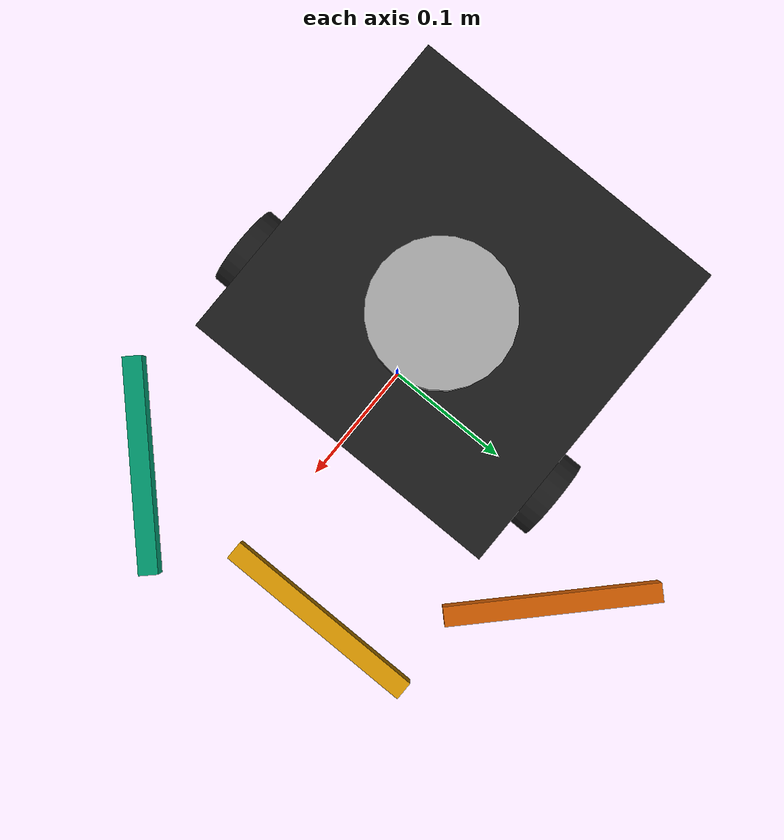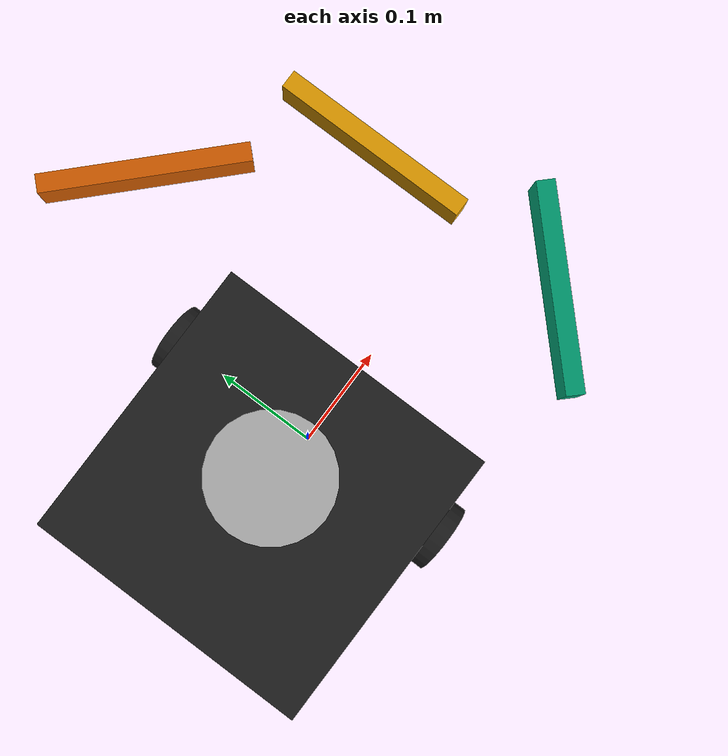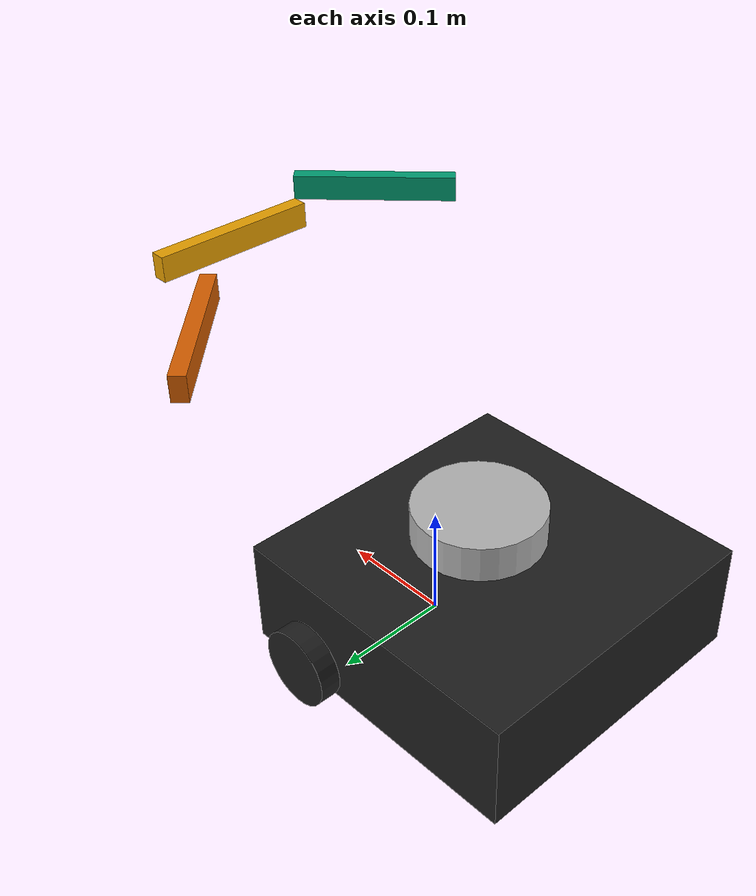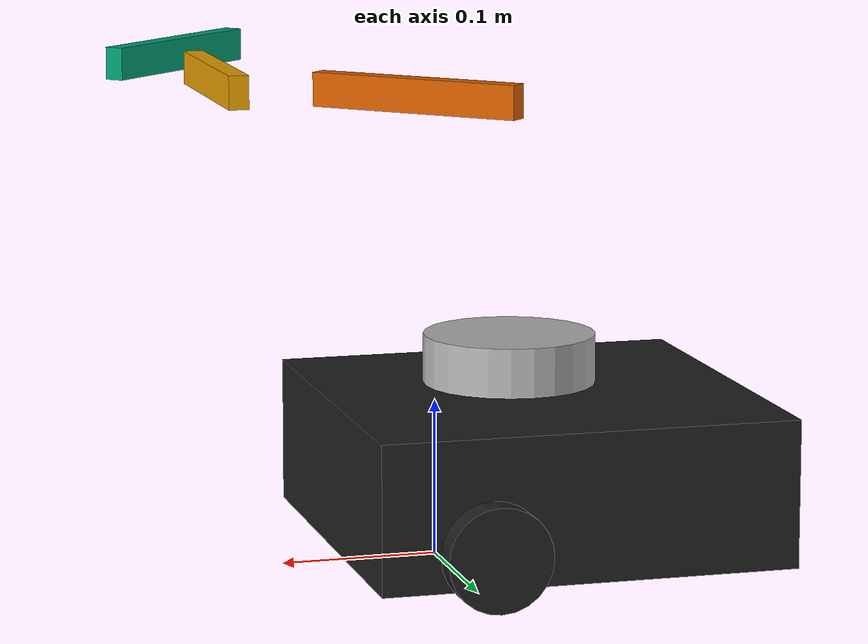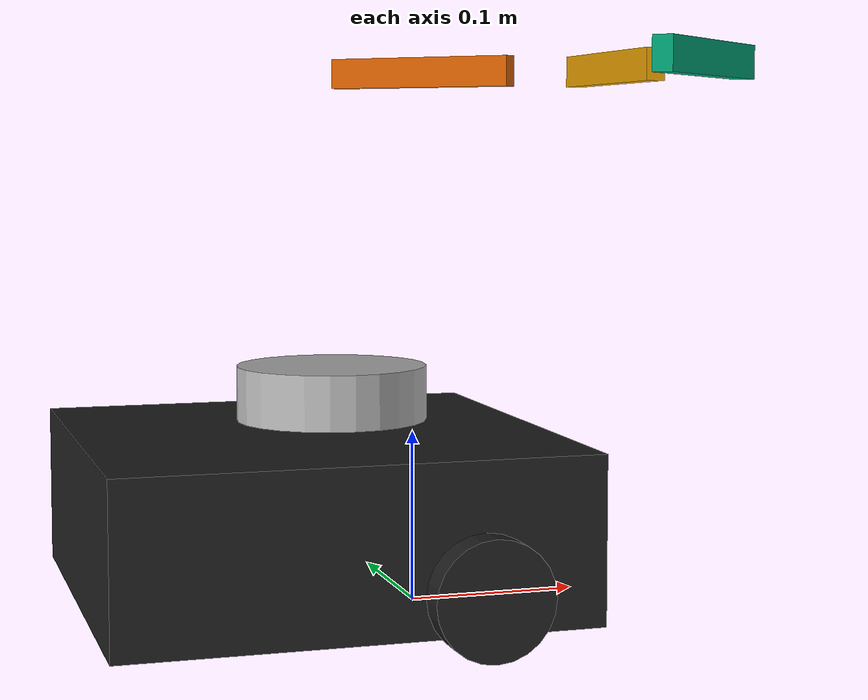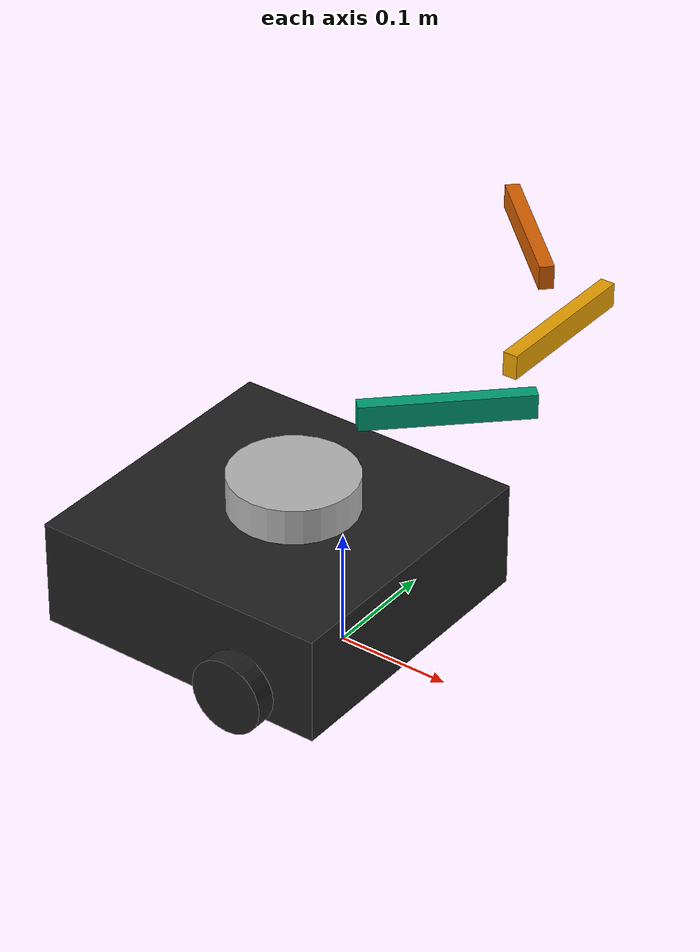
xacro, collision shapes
<?xml version="1.0" ?>
<robot name="turtlebot3_waffle_pi" xmlns:xacro="http://ros.org/wiki/xacro">
  <xacro:include filename="$(find turtlebot3_description)/urdf/common_properties.xacro"/>
  <xacro:include filename="$(find culvert_sim)/urdf/turtlebot3_waffle_pi.gazebo.xacro"/>

  <xacro:property name="r200_cam_rgb_px" value="0.005"/>
  <xacro:property name="r200_cam_rgb_py" value="0.018"/>
  <xacro:property name="r200_cam_rgb_pz" value="0.013"/>
  <xacro:property name="r200_cam_depth_offset" value="0.01"/>

  <link name="base_footprint"/>

  <joint name="base_joint" type="fixed">
    <parent link="base_footprint"/>
    <child link="base_link" />
    <origin xyz="0 0 0.010" rpy="0 0 0"/>
  </joint>

  <link name="base_link">
    <visual>
      <origin xyz="-0.064 0 0.0" rpy="0 0 0"/>
      <geometry>
        <mesh filename="package://turtlebot3_description/meshes/bases/waffle_pi_base.stl" scale="0.001 0.001 0.001"/>
      </geometry>
      <material name="light_black"/>
    </visual>

    <collision>
      <origin xyz="-0.064 0 0.047" rpy="0 0 0"/>
      <geometry>
        <box size="0.266 0.266 0.094"/>
      </geometry>
    </collision>

    <inertial>
      <origin xyz="0 0 0" rpy="0 0 0"/>
      <mass value="1.3729096e+00"/>
      <inertia ixx="8.7002718e-03" ixy="-4.7576583e-05" ixz="1.1160499e-04"
               iyy="8.6195418e-03" iyz="-3.5422299e-06"
               izz="1.4612727e-02" />
    </inertial>
  </link>

  <joint name="wheel_left_joint" type="continuous">
    <parent link="base_link"/>
    <child link="wheel_left_link"/>
    <origin xyz="0.0 0.144 0.023" rpy="-1.57 0 0"/>
    <axis xyz="0 0 1"/>
  </joint>

  <link name="wheel_left_link">
    <visual>
      <origin xyz="0 0 0" rpy="1.57079632679  0 0"/>
      <geometry>
        <mesh filename="package://turtlebot3_description/meshes/wheels/left_tire.stl" scale="0.001 0.001 0.001"/>
      </geometry>
      <material name="dark"/>
    </visual>

    <collision>
      <origin xyz="0 0 0" rpy="0 0 0"/>
      <geometry>
        <cylinder length="0.018" radius="0.033"/>
      </geometry>
    </collision>

    <inertial>
      <origin xyz="0 0 0" />
      <mass value="2.8498940e-02" />
      <inertia ixx="1.1175580e-05" ixy="-4.2369783e-11" ixz="-5.9381719e-09"
               iyy="1.1192413e-05" iyz="-1.4400107e-11"
               izz="2.0712558e-05" />
      </inertial>
  </link>

  <joint name="wheel_right_joint" type="continuous">
    <parent link="base_link"/>
    <child link="wheel_right_link"/>
    <origin xyz="0.0 -0.144 0.023" rpy="-1.57079632679  0 0"/>
    <axis xyz="0 0 1"/>
  </joint>

  <link name="wheel_right_link">
    <visual>
      <origin xyz="0 0 0" rpy="1.57079632679  0 0"/>
      <geometry>
        <mesh filename="package://turtlebot3_description/meshes/wheels/right_tire.stl" scale="0.001 0.001 0.001"/>
      </geometry>
      <material name="dark"/>
    </visual>

    <collision>
      <origin xyz="0 0 0" rpy="0 0 0"/>
      <geometry>
        <cylinder length="0.018" radius="0.033"/>
      </geometry>
    </collision>

    <inertial>
      <origin xyz="0 0 0" />
      <mass value="2.8498940e-02" />
      <inertia ixx="1.1175580e-05" ixy="-4.2369783e-11" ixz="-5.9381719e-09"
               iyy="1.1192413e-05" iyz="-1.4400107e-11"
               izz="2.0712558e-05" />
      </inertial>
  </link>

  <joint name="caster_back_right_joint" type="fixed">
    <parent link="base_link"/>
    <child link="caster_back_right_link"/>
    <origin xyz="-0.177 -0.064 -0.004" rpy="-1.57079632679  0 0"/>
  </joint>

  <link name="caster_back_right_link">
    <collision>
      <origin xyz="0 0.001 0" rpy="0 0 0"/>
      <geometry>
        <box size="0.030 0.009 0.020"/>
      </geometry>
    </collision>

    <inertial>
      <origin xyz="0 0 0" />
      <mass value="0.005" />
      <inertia ixx="0.001" ixy="0.0" ixz="0.0"
               iyy="0.001" iyz="0.0"
               izz="0.001" />
    </inertial>
  </link>

  <joint name="caster_back_left_joint" type="fixed">
    <parent link="base_link"/>
    <child link="caster_back_left_link"/>
    <origin xyz="-0.177 0.064 -0.004" rpy="-1.57079632679  0 0"/>
  </joint>

  <link name="caster_back_left_link">
    <collision>
      <origin xyz="0 0.001 0" rpy="0 0 0"/>
      <geometry>
        <box size="0.030 0.009 0.020"/>
      </geometry>
    </collision>

    <inertial>
      <origin xyz="0 0 0" />
      <mass value="0.005" />
      <inertia ixx="0.001" ixy="0.0" ixz="0.0"
               iyy="0.001" iyz="0.0"
               izz="0.001" />
    </inertial>
  </link>

  <joint name="imu_joint" type="fixed">
    <parent link="base_link"/>
    <child link="imu_link"/>
    <origin xyz="0.0 0 0.068" rpy="0 0 0"/>
  </joint>

  <link name="imu_link"/>

  <joint name="scan_joint" type="fixed">
    <parent link="base_link"/>
    <child link="base_scan"/>
    <origin xyz="-0.064 0 0.122" rpy="0 0 0"/>
  </joint>

  <link name="base_scan">
    <visual>
      <origin xyz="0 0 0.0" rpy="0 0 0"/>
      <geometry>
        <mesh filename="package://turtlebot3_description/meshes/sensors/lds.stl" scale="0.001 0.001 0.001"/>
      </geometry>
      <material name="dark"/>
    </visual>

    <collision>
      <origin xyz="0.015 0 -0.0065" rpy="0 0 0"/>
      <geometry>
        <cylinder length="0.0315" radius="0.055"/>
      </geometry>
    </collision>

    <inertial>
      <mass value="0.114" />
      <origin xyz="0 0 0" />
      <inertia ixx="0.001" ixy="0.0" ixz="0.0"
               iyy="0.001" iyz="0.0"
               izz="0.001" />
    </inertial>
  </link>

  <!-- camera 0 -->

  <!-- camera 1 -->

  <!-- camera 2 -->

  <!-- rgbd 0 front -->
  <joint name="camera_0_joint" type="fixed">
    <origin xyz="0.15 0 0.3" rpy="0 0 0"/>
    <parent link="base_link"/>
    <child link="camera_0_link"/>
  </joint>

  <link name="camera_0_link">
    <visual>
     <origin xyz="0 0 0" rpy="1.57 0 1.57"/>
      <geometry>
       <mesh filename="package://turtlebot3_description/meshes/sensors/r200.dae" />
      </geometry>
    </visual>
    <collision>
      <origin xyz="0.003 0.065 0.007" rpy="0 0 0"/>
      <geometry>
        <box size="0.012 0.132 0.020"/>
      </geometry>
    </collision>

    <!-- This inertial field needs doesn't contain reliable data!! -->
  </link>

  <joint name="camera_0_rgb_joint" type="fixed">
    <origin xyz="${r200_cam_rgb_px} ${r200_cam_rgb_py} ${r200_cam_rgb_pz}" rpy="0 0 0"/>
    <parent link="camera_0_link"/>
    <child link="camera_0_rgb_frame"/>
  </joint>
  <link name="camera_0_rgb_frame"/>

  <joint name="camera_0_rgb_optical_joint" type="fixed">
    <origin xyz="0 0 0" rpy="-1.57 0 -1.57"/>
    <parent link="camera_0_rgb_frame"/>
    <child link="camera_0_rgb_optical_frame"/>
  </joint>
  <link name="camera_0_rgb_optical_frame"/>

  <joint name="camera_0_depth_joint" type="fixed">
    <origin xyz="${r200_cam_rgb_px} ${r200_cam_rgb_py + r200_cam_depth_offset} ${r200_cam_rgb_pz}" rpy="0 0 0"/>
    <parent link="camera_0_link"/>
    <child link="camera_0_depth_frame"/>
  </joint>
  <link name="camera_0_depth_frame"/>

  <joint name="camera_0_depth_optical_joint" type="fixed">
    <origin xyz="0 0 0" rpy="-1.57 0 -1.57"/>
    <parent link="camera_0_depth_frame"/>
    <child link="camera_0_depth_optical_frame"/>
  </joint>
  <link name="camera_0_depth_optical_frame"/>

  <!-- rgbd 1 left-->
  <joint name="camera_1_joint" type="fixed">
    <origin xyz="0.101 0.12 0.3" rpy="0 0 0.8"/>
    <parent link="base_link"/>
    <child link="camera_1_link"/>
  </joint>

  <link name="camera_1_link">
    <visual>
     <origin xyz="0 0 0" rpy="1.57 0 1.57"/>
      <geometry>
       <mesh filename="package://turtlebot3_description/meshes/sensors/r200.dae" />
      </geometry>
    </visual>
    <collision>
      <origin xyz="0.003 0.065 0.007" rpy="0 0 0"/>
      <geometry>
        <box size="0.012 0.132 0.020"/>
      </geometry>
    </collision>

    <!-- This inertial field needs doesn't contain reliable data!! -->
  </link>

  <joint name="camera_1_rgb_joint" type="fixed">
    <origin xyz="${r200_cam_rgb_px} ${r200_cam_rgb_py} ${r200_cam_rgb_pz}" rpy="0 0 0"/>
    <parent link="camera_1_link"/>
    <child link="camera_1_rgb_frame"/>
  </joint>
  <link name="camera_1_rgb_frame"/>

  <joint name="camera_1_rgb_optical_joint" type="fixed">
    <origin xyz="0 0 0" rpy="-1.57 0 -1.57"/>
    <parent link="camera_1_rgb_frame"/>
    <child link="camera_1_rgb_optical_frame"/>
  </joint>
  <link name="camera_1_rgb_optical_frame"/>

  <joint name="camera_1_depth_joint" type="fixed">
    <origin xyz="${r200_cam_rgb_px} ${r200_cam_rgb_py + r200_cam_depth_offset} ${r200_cam_rgb_pz}" rpy="0 0 0"/>
    <parent link="camera_1_link"/>
    <child link="camera_1_depth_frame"/>
  </joint>
  <link name="camera_1_depth_frame"/>

  <joint name="camera_1_depth_optical_joint" type="fixed">
    <origin xyz="0 0 0" rpy="-1.57 0 -1.57"/>
    <parent link="camera_1_depth_frame"/>
    <child link="camera_1_depth_optical_frame"/>
  </joint>
  <link name="camera_1_depth_optical_frame"/>

  <!-- rgbd 2 right-->
  <joint name="camera_2_joint" type="fixed">
    <origin xyz="0.101 -0.12 0.3" rpy="0 0 -0.8"/>
    <parent link="base_link"/>
    <child link="camera_2_link"/>
  </joint>

  <link name="camera_2_link">
    <visual>
     <origin xyz="0 0 0" rpy="1.57 0 1.57"/>
      <geometry>
       <mesh filename="package://turtlebot3_description/meshes/sensors/r200.dae" />
      </geometry>
    </visual>
    <collision>
      <origin xyz="0.003 0.065 0.007" rpy="0 0 0"/>
      <geometry>
        <box size="0.012 0.132 0.020"/>
      </geometry>
    </collision>

    <!-- This inertial field needs doesn't contain reliable data!! -->
  </link>

  <joint name="camera_2_rgb_joint" type="fixed">
    <origin xyz="${r200_cam_rgb_px} ${r200_cam_rgb_py} ${r200_cam_rgb_pz}" rpy="0 0 0"/>
    <parent link="camera_2_link"/>
    <child link="camera_2_rgb_frame"/>
  </joint>
  <link name="camera_2_rgb_frame"/>

  <joint name="camera_2_rgb_optical_joint" type="fixed">
    <origin xyz="0 0 0" rpy="-1.57 0 -1.57"/>
    <parent link="camera_2_rgb_frame"/>
    <child link="camera_2_rgb_optical_frame"/>
  </joint>
  <link name="camera_2_rgb_optical_frame"/>

  <joint name="camera_2_depth_joint" type="fixed">
    <origin xyz="${r200_cam_rgb_px} ${r200_cam_rgb_py + r200_cam_depth_offset} ${r200_cam_rgb_pz}" rpy="0 0 0"/>
    <parent link="camera_2_link"/>
    <child link="camera_2_depth_frame"/>
  </joint>
  <link name="camera_2_depth_frame"/>

  <joint name="camera_2_depth_optical_joint" type="fixed">
    <origin xyz="0 0 0" rpy="-1.57 0 -1.57"/>
    <parent link="camera_2_depth_frame"/>
    <child link="camera_2_depth_optical_frame"/>
  </joint>
  <link name="camera_2_depth_optical_frame"/>

</robot>
